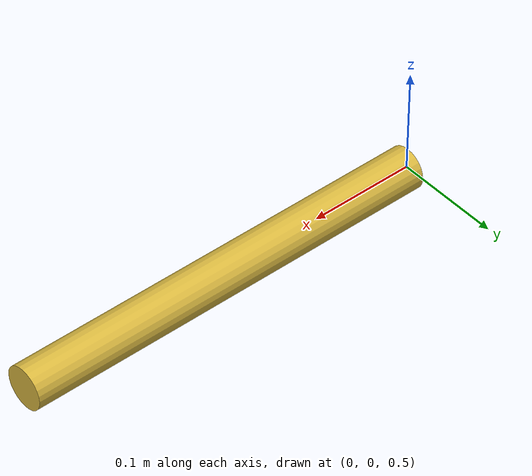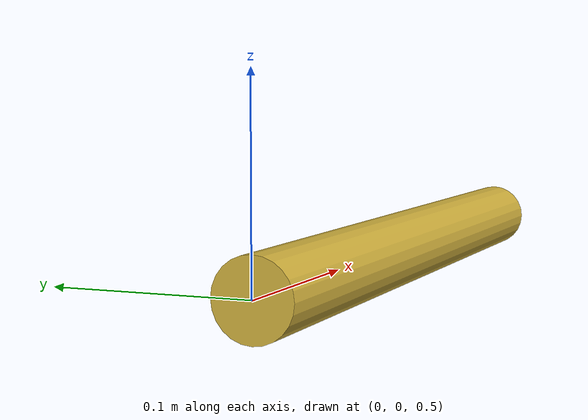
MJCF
<mujoco model="ladder0_rung3_mujoco">

  <!-- Only gravity and the timestep are set from the contract.  Everything
       else is MuJoCo's default, on purpose: this arm is the un-tuned
       reference for the solver OmniSim runs underneath. -->
  <option timestep="0.004" gravity="0 0 -9.81"/>

  <default>
    <!-- sliding / torsional / rolling.  condim defaults to 3, so only the
         first component is in force; the rest are declared for the record. -->
    <geom friction="1.0 0.005 0.0001"/>
  </default>

  <worldbody>
    <body name="link" pos="0 0 0.5">
      <joint name="hinge" type="hinge" axis="0 0 1"/>
      <geom name="link_geom" type="cylinder" fromto="0 0 0  0.4 0 0"
            size="0.02" mass="0.5" rgba="0.85 0.72 0.25 1"/>
    </body>
  </worldbody>

  <actuator>
    <!-- Deadbeat velocity servo: kv = I/dt = 6.6792, half the explicit-
         Euler stability bound 2I/dt, for a link hinged about one end with
         I = m(L^2/3 + r^2/4) = 0.026717 kg m^2. -->
    <velocity name="hinge_motor" joint="hinge" kv="6.679167"/>
  </actuator>

</mujoco>
